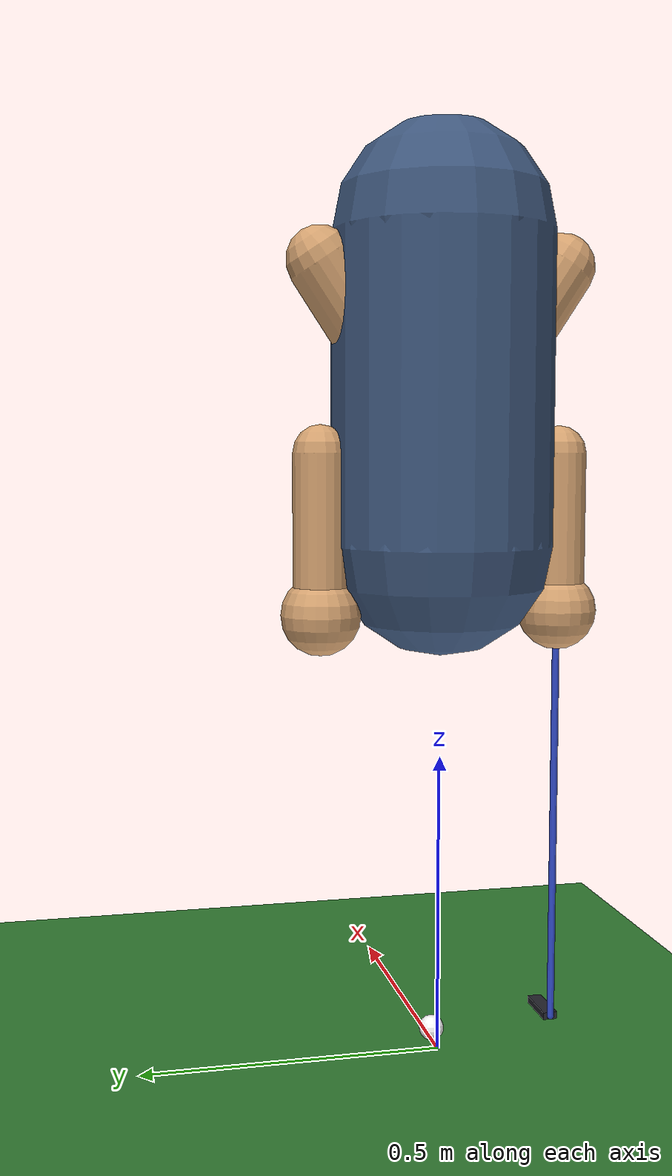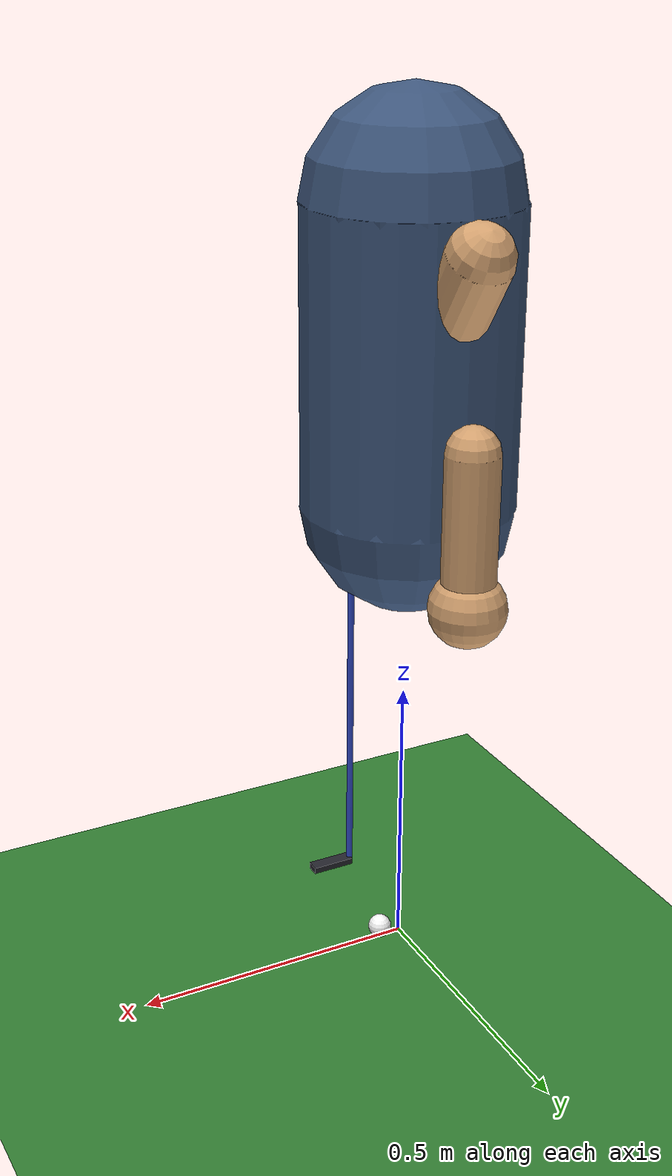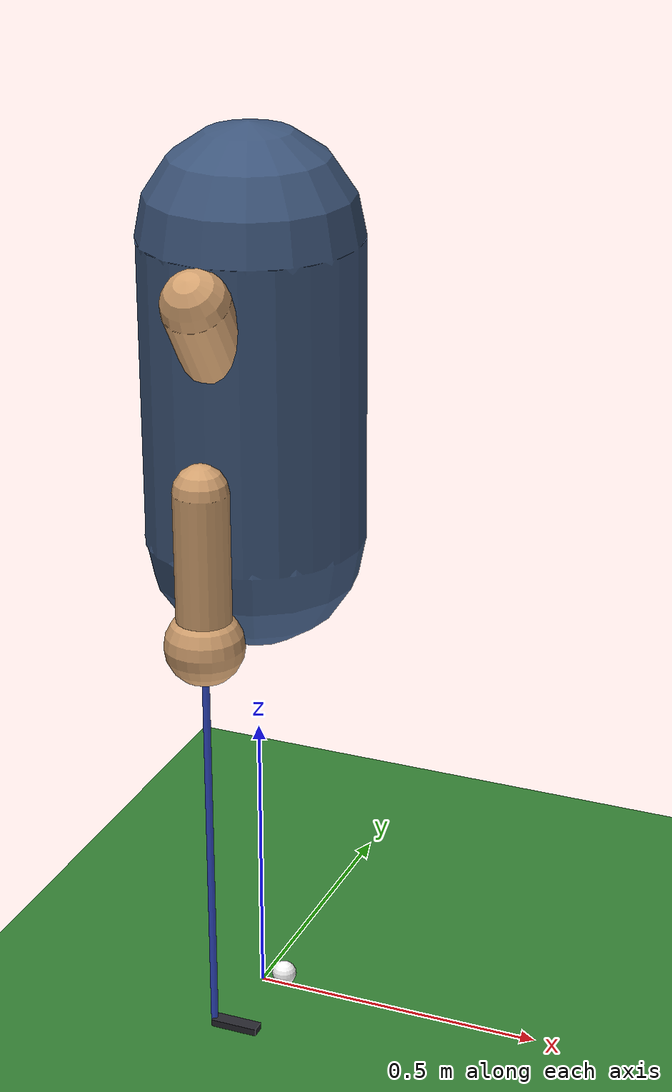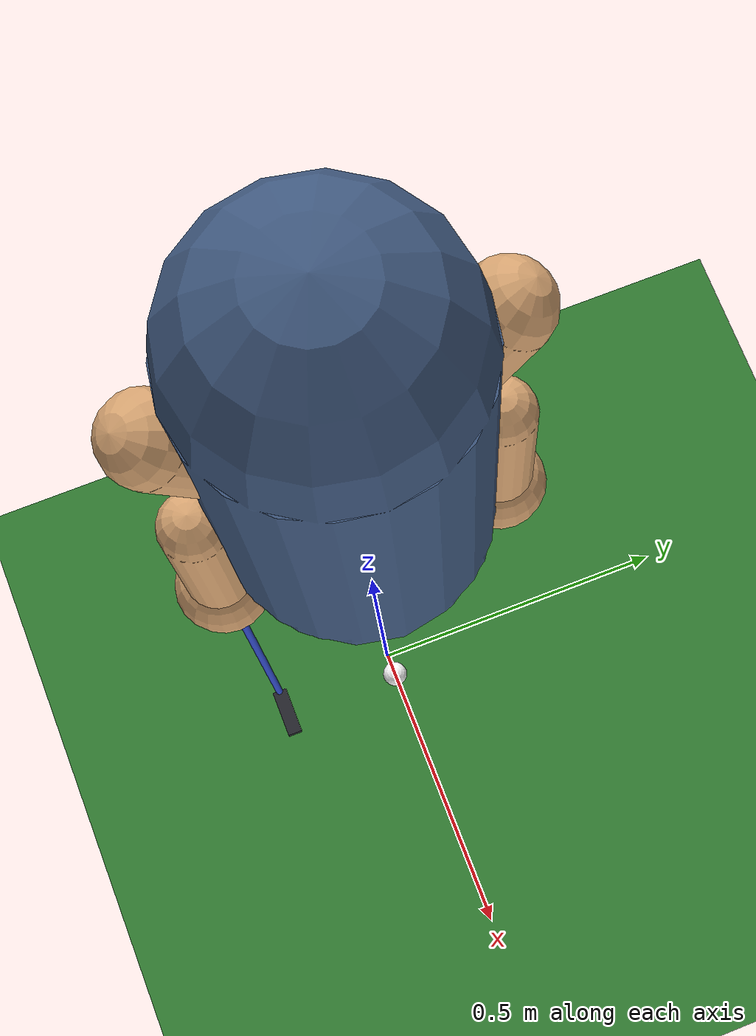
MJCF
<mujoco model="golf_player_upper_body">
  <option gravity="0 0 -9.81" timestep="0.001" integrator="RK4"/>

  <visual>
    <global azimuth="130" elevation="-15"/>
  </visual>

  <worldbody>
    <!-- Campo e bola. As pernas serão adicionadas numa próxima versão. -->
    <geom name="ground" type="plane" size="5 5 0.1"
          friction="0.25 0.005 0.0001" rgba="0.2 0.5 0.2 1"/>

    <!-- Tronco com rotação inicial de 45 graus em torno do eixo vertical z. -->
    <body name="torso" pos="0 0 1.10">
      <joint name="torso_rotation" type="hinge" axis="0 0 1"
             damping="0.08" range="-1.57 1.57" limited="true"/>
      <!-- O tronco tem massa aproximada de 25 kg e é visualmente uma cápsula. -->
      <geom name="torso_geom" type="capsule" fromto="0 0 -0.25 0 0 0.25"
            size="0.18" mass="25" rgba="0.25 0.35 0.5 1"/>

      <!-- Braço direito: ombro, braço superior, antebraço e mão/taco. -->
      <body name="right_upper_arm" pos="0 -0.20 0.20">
        <!-- Rotação no plano x-z, com eixo y. -->
        <joint name="right_shoulder" type="hinge" axis="0 1 0"
               damping="0.05" range="-1.8 1.8" limited="true"/>
          <geom name="right_upper_arm_geom" type="capsule"
            fromto="0 0 0 0 0.20 -0.30" size="0.055" mass="2.0"
              rgba="0.85 0.65 0.45 1"/>

        <body name="right_forearm" pos="0 0 -0.30">
          <joint name="right_elbow" type="hinge" axis="0 1 0"
                 damping="0.03" range="-2.6 0.1" limited="true"/>
          <geom name="right_forearm_geom" type="capsule"
                fromto="0 0 0 0 0 -0.26" size="0.045" mass="1.2"
                rgba="0.85 0.65 0.45 1"/>

          <body name="right_hand" pos="0 0 -0.26">
            <geom name="right_hand_geom" type="sphere" size="0.065"
                  mass="0.45" rgba="0.85 0.65 0.45 1"/>
            <!--
              O taco está preso à mão nesta etapa; a junta do pulso virá depois.
              A haste tem 0.70 m, desde a mão até perto do chão.
            -->
            <geom name="club_shaft" type="capsule"
                  fromto="0 0 0 0 0 -0.70" size="0.006" mass="0.30"
                  rgba="0.2 0.3 0.8 1"/>
            <geom name="club_head" type="box" pos="0.04 0 -0.70"
              size="0.04 0.012 0.006" mass="0.10"
              friction="0.05 0.005 0.0001" rgba="0.15 0.15 0.18 1"/>
          </body>
        </body>
      </body>

      <!-- Braço esquerdo, modelado separadamente para representar as duas mãos. -->
      <body name="left_upper_arm" pos="0 0.20 0.20">
        <joint name="left_shoulder" type="hinge" axis="0 1 0"
               damping="0.05" range="-1.8 1.8" limited="true"/>
          <geom name="left_upper_arm_geom" type="capsule"
            fromto="0 0 0 0 -0.20 -0.30" size="0.055" mass="2.0"
              rgba="0.85 0.65 0.45 1"/>

        <body name="left_forearm" pos="0 0 -0.30">
          <joint name="left_elbow" type="hinge" axis="0 1 0"
                 damping="0.03" range="-2.6 0.1" limited="true"/>
          <geom name="left_forearm_geom" type="capsule"
                fromto="0 0 0 0 0 -0.26" size="0.045" mass="1.2"
                rgba="0.85 0.65 0.45 1"/>
          <geom name="left_hand_geom" type="sphere" pos="0 0 -0.26"
                size="0.065" mass="0.45" rgba="0.85 0.65 0.45 1"/>
        </body>
      </body>
    </body>

    <!-- Bola de golfe: 45 g e 42 mm de diâmetro. -->
    <body name="golf_ball" pos="0.04 0 0.021">
      <freejoint/>
      <geom name="ball" type="sphere" size="0.021" mass="0.045"
            friction="0.25 0.005 0.0001" rgba="1 1 1 1"/>
    </body>
  </worldbody>
</mujoco>
